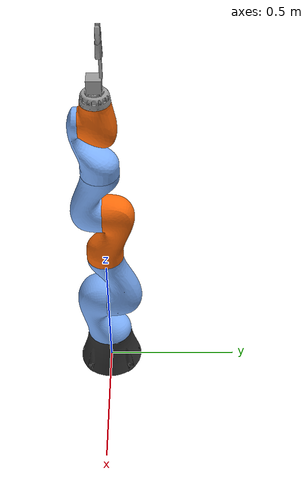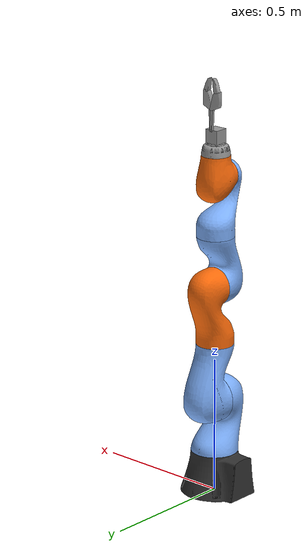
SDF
<?xml version="1.0" ?>
<sdf version='1.6'>
  <world name='default'>
  <model name='lbr_iiwa_with_wsg50'>
    <link name='lbr_iiwa_link_0'>
      <pose>0 0 0 0 -0 0</pose>
      <inertial>
        <pose>-0.1 0 0.07 0 -0 0</pose>
        <mass>0</mass>
        <inertia>
          <ixx>0.05</ixx>
          <ixy>0</ixy>
          <ixz>0</ixz>
          <iyy>0.06</iyy>
          <iyz>0</iyz>
          <izz>0.03</izz>
        </inertia>
      </inertial>
      <collision name='lbr_iiwa_link_0_collision'>
        <pose>0 0 0 0 -0 0</pose>
        <geometry>
          <mesh>
            <scale>1 1 1</scale>
            <uri>/meshes/link_0.stl</uri>
          </mesh>
        </geometry>
      </collision>
      <visual name='lbr_iiwa_link_0_visual'>
        <pose>0 0 0 0 -0 0</pose>
        <geometry>
          <mesh>
            <scale>1 1 1</scale>
            <uri>meshes/link_0.obj</uri>
          </mesh>
        </geometry>
        <material>
          <ambient>1 0 0 1</ambient>
          <diffuse>0.2 0.2 0.2 1.0</diffuse>
          <specular>0.4 0.4 0.4 1</specular>
          <emissive>0 0 0 0</emissive>
        </material>
      </visual>
    </link>
    <link name='lbr_iiwa_link_1'>
      <pose>0 0 0.1575 0 -0 0</pose>
      <inertial>
        <pose>0 -0.03 0.12 0 -0 0</pose>
        <mass>4</mass>
        <inertia>
          <ixx>0.1</ixx>
          <ixy>0</ixy>
          <ixz>0</ixz>
          <iyy>0.09</iyy>
          <iyz>0</iyz>
          <izz>0.02</izz>
        </inertia>
      </inertial>
      <collision name='lbr_iiwa_link_1_collision'>
        <pose>0 0 0 0 -0 0</pose>
        <geometry>
          <mesh>
            <scale>1 1 1</scale>
            <uri>meshes/link_1.stl</uri>
          </mesh>
        </geometry>
      </collision>
      <visual name='lbr_iiwa_link_1_visual'>
        <pose>0 0 0 0 -0 0</pose>
        <geometry>
          <mesh>
            <scale>1 1 1</scale>
            <uri>meshes/link_1.obj</uri>
          </mesh>
        </geometry>
        <material>
          <ambient>1 0 0 1</ambient>
          <diffuse>0.5 0.7 1.0 1.0</diffuse>
          <specular>0.5 0.5 0.5 1</specular>
          <emissive>0 0 0 0</emissive>
        </material>
      </visual>
    </link>
    <joint name='J0' type='revolute'>
      <child>lbr_iiwa_link_1</child>
      <parent>lbr_iiwa_link_0</parent>
      <axis>
        <xyz>0 0 1</xyz>
        <limit>
          <lower>-2.96706</lower>
          <upper>2.96706</upper>
          <effort>300</effort>
          <velocity>10</velocity>
        </limit>
        <dynamics>
          <damping>0.5</damping>
          <friction>0</friction>
          <spring_reference>0</spring_reference>
          <spring_stiffness>0</spring_stiffness>
        </dynamics>
      </axis>
    </joint>
    <link name='lbr_iiwa_link_2'>
      <pose>0 0 0.36 1.5708 -0 -3.14159</pose>
      <inertial>
        <pose>0.0003 0.059 0.042 0 -0 0</pose>
        <mass>4</mass>
        <inertia>
          <ixx>0.05</ixx>
          <ixy>0</ixy>
          <ixz>0</ixz>
          <iyy>0.018</iyy>
          <iyz>0</iyz>
          <izz>0.044</izz>
        </inertia>
      </inertial>
      <collision name='lbr_iiwa_link_2_collision'>
        <pose>0 0 0 0 -0 0</pose>
        <geometry>
          <mesh>
            <scale>1 1 1</scale>
            <uri>meshes/link_2.stl</uri>
          </mesh>
        </geometry>
      </collision>
      <visual name='lbr_iiwa_link_2_visual'>
        <pose>0 0 0 0 -0 0</pose>
        <geometry>
          <mesh>
            <scale>1 1 1</scale>
            <uri>meshes/link_2.obj</uri>
          </mesh>
        </geometry>
        <material>
          <ambient>1 0 0 1</ambient>
          <diffuse>0.5 0.7 1.0 1.0</diffuse>
          <specular>0.5 0.5 0.5 1</specular>
          <emissive>0 0 0 0</emissive>
        </material>
      </visual>
    </link>
    <joint name='J1' type='revolute'>
      <child>lbr_iiwa_link_2</child>
      <parent>lbr_iiwa_link_1</parent>
      <axis>
        <xyz>0 0 1</xyz>
        <limit>
          <lower>-2.0944</lower>
          <upper>2.0944</upper>
          <effort>300</effort>
          <velocity>10</velocity>
        </limit>
        <dynamics>
          <damping>0.5</damping>
          <friction>0</friction>
          <spring_reference>0</spring_reference>
          <spring_stiffness>0</spring_stiffness>
        </dynamics>
      </axis>
    </joint>
    <link name='lbr_iiwa_link_3'>
      <pose>0 -0 0.5645 0 0 0</pose>
      <inertial>
        <pose>0 0.03 0.13 0 -0 0</pose>
        <mass>3</mass>
        <inertia>
          <ixx>0.08</ixx>
          <ixy>0</ixy>
          <ixz>0</ixz>
          <iyy>0.075</iyy>
          <iyz>0</iyz>
          <izz>0.01</izz>
        </inertia>
      </inertial>
      <collision name='lbr_iiwa_link_3_collision'>
        <pose>0 0 0 0 -0 0</pose>
        <geometry>
          <mesh>
            <scale>1 1 1</scale>
            <uri>meshes/link_3.stl</uri>
          </mesh>
        </geometry>
      </collision>
      <visual name='lbr_iiwa_link_3_visual'>
        <pose>0 0 0 0 -0 0</pose>
        <geometry>
          <mesh>
            <scale>1 1 1</scale>
            <uri>meshes/link_3.obj</uri>
          </mesh>
        </geometry>
        <material>
          <ambient>1 0 0 1</ambient>
          <diffuse>1.0 0.423529411765 0.0392156862745 1.0</diffuse>
          <specular>0.5 0.5 0.5 1</specular>
          <emissive>0 0 0 0</emissive>
        </material>
      </visual>
    </link>
    <joint name='J2' type='revolute'>
      <child>lbr_iiwa_link_3</child>
      <parent>lbr_iiwa_link_2</parent>
      <axis>
        <xyz>0 0 1</xyz>
        <limit>
          <lower>-2.96706</lower>
          <upper>2.96706</upper>
          <effort>300</effort>
          <velocity>10</velocity>
        </limit>
        <dynamics>
          <damping>0.5</damping>
          <friction>0</friction>
          <spring_reference>0</spring_reference>
          <spring_stiffness>0</spring_stiffness>
        </dynamics>
      </axis>
    </joint>
    <link name='lbr_iiwa_link_4'>
      <pose>0 -0 0.78 1.5708 0 0</pose>
      <inertial>
        <pose>0 0.067 0.034 0 -0 0</pose>
        <mass>2.7</mass>
        <inertia>
          <ixx>0.03</ixx>
          <ixy>0</ixy>
          <ixz>0</ixz>
          <iyy>0.01</iyy>
          <iyz>0</iyz>
          <izz>0.029</izz>
        </inertia>
      </inertial>
      <collision name='lbr_iiwa_link_4_collision'>
        <pose>0 0 0 0 -0 0</pose>
        <geometry>
          <mesh>
            <scale>1 1 1</scale>
            <uri>meshes/link_4.stl</uri>
          </mesh>
        </geometry>
      </collision>
      <visual name='lbr_iiwa_link_4_visual'>
        <pose>0 0 0 0 -0 0</pose>
        <geometry>
          <mesh>
            <scale>1 1 1</scale>
            <uri>meshes/link_4.obj</uri>
          </mesh>
        </geometry>
        <material>
          <ambient>1 0 0 1</ambient>
          <diffuse>0.5 0.7 1.0 1.0</diffuse>
          <specular>0.5 0.5 0.5 1</specular>
          <emissive>0 0 0 0</emissive>
        </material>
      </visual>
    </link>
    <joint name='J3' type='revolute'>
      <child>lbr_iiwa_link_4</child>
      <parent>lbr_iiwa_link_3</parent>
      <axis>
        <xyz>0 0 1</xyz>
        <limit>
          <lower>-2.0944</lower>
          <upper>2.0944</upper>
          <effort>300</effort>
          <velocity>10</velocity>
        </limit>
        <dynamics>
          <damping>0.5</damping>
          <friction>0</friction>
          <spring_reference>0</spring_reference>
          <spring_stiffness>0</spring_stiffness>
        </dynamics>
      </axis>
    </joint>
    <link name='lbr_iiwa_link_5'>
      <pose>0 -0 0.9645 0 -0 -3.14159</pose>
      <inertial>
        <pose>0.0001 0.021 0.076 0 -0 0</pose>
        <mass>1.7</mass>
        <inertia>
          <ixx>0.02</ixx>
          <ixy>0</ixy>
          <ixz>0</ixz>
          <iyy>0.018</iyy>
          <iyz>0</iyz>
          <izz>0.005</izz>
        </inertia>
      </inertial>
      <collision name='lbr_iiwa_link_5_collision'>
        <pose>0 0 0 0 -0 0</pose>
        <geometry>
          <mesh>
            <scale>1 1 1</scale>
            <uri>meshes/link_5.stl</uri>
          </mesh>
        </geometry>
      </collision>
      <visual name='lbr_iiwa_link_5_visual'>
        <pose>0 0 0 0 -0 0</pose>
        <geometry>
          <mesh>
            <scale>1 1 1</scale>
            <uri>meshes/link_5.obj</uri>
          </mesh>
        </geometry>
        <material>
          <ambient>1 0 0 1</ambient>
          <diffuse>0.5 0.7 1.0 1.0</diffuse>
          <specular>0.5 0.5 0.5 1</specular>
          <emissive>0 0 0 0</emissive>
        </material>
      </visual>
    </link>
    <joint name='J4' type='revolute'>
      <child>lbr_iiwa_link_5</child>
      <parent>lbr_iiwa_link_4</parent>
      <axis>
        <xyz>0 0 1</xyz>
        <limit>
          <lower>-2.96706</lower>
          <upper>2.96706</upper>
          <effort>300</effort>
          <velocity>10</velocity>
        </limit>
        <dynamics>
          <damping>0.5</damping>
          <friction>0</friction>
          <spring_reference>0</spring_reference>
          <spring_stiffness>0</spring_stiffness>
        </dynamics>
      </axis>
    </joint>
    <link name='lbr_iiwa_link_6'>
      <pose>0 0 1.18 1.5708 -0 -3.14159</pose>
      <inertial>
        <pose>0 0.0006 0.0004 0 -0 0</pose>
        <mass>1.8</mass>
        <inertia>
          <ixx>0.005</ixx>
          <ixy>0</ixy>
          <ixz>0</ixz>
          <iyy>0.0036</iyy>
          <iyz>0</iyz>
          <izz>0.0047</izz>
        </inertia>
      </inertial>
      <collision name='lbr_iiwa_link_6_collision'>
        <pose>0 0 0 0 -0 0</pose>
        <geometry>
          <mesh>
            <scale>1 1 1</scale>
            <uri>meshes/link_6.stl</uri>
          </mesh>
        </geometry>
      </collision>
      <visual name='lbr_iiwa_link_6_visual'>
        <pose>0 0 0 0 -0 0</pose>
        <geometry>
          <mesh>
            <scale>1 1 1</scale>
            <uri>meshes/link_6.obj</uri>
          </mesh>
        </geometry>
        <material>
          <ambient>1 0 0 1</ambient>
          <diffuse>1.0 0.423529411765 0.0392156862745 1.0</diffuse>
          <specular>0.5 0.5 0.5 1</specular>
          <emissive>0 0 0 0</emissive>
        </material>
      </visual>
    </link>
    <joint name='J5' type='revolute'>
      <child>lbr_iiwa_link_6</child>
      <parent>lbr_iiwa_link_5</parent>
      <axis>
        <xyz>0 0 1</xyz>
        <limit>
          <lower>-2.0944</lower>
          <upper>2.0944</upper>
          <effort>300</effort>
          <velocity>10</velocity>
        </limit>
        <dynamics>
          <damping>0.5</damping>
          <friction>0</friction>
          <spring_reference>0</spring_reference>
          <spring_stiffness>0</spring_stiffness>
        </dynamics>
      </axis>
    </joint>
    <link name='lbr_iiwa_link_7'>
      <pose>0 0 1.261 0 0 0</pose>
      <inertial>
        <pose>0 0 0.02 0 -0 0</pose>
        <mass>1.3</mass>
        <inertia>
          <ixx>0.001</ixx>
          <ixy>0</ixy>
          <ixz>0</ixz>
          <iyy>0.001</iyy>
          <iyz>0</iyz>
          <izz>0.001</izz>
        </inertia>
      </inertial>
      <collision name='lbr_iiwa_link_7_collision'>
        <pose>0 0 0 0 -0 0</pose>
        <geometry>
          <mesh>
            <scale>1 1 1</scale>
            <uri>meshes/link_7.stl</uri>
          </mesh>
        </geometry>
      </collision>
      <visual name='lbr_iiwa_link_7_visual'>
        <pose>0 0 0 0 -0 0</pose>
        <geometry>
          <mesh>
            <scale>1 1 1</scale>
            <uri>meshes/link_7.obj</uri>
          </mesh>
        </geometry>
        <material>
          <ambient>1 0 0 1</ambient>
          <diffuse>0.6 0.6 0.6 1</diffuse>
          <specular>0.5 0.5 0.5 1</specular>
          <emissive>0 0 0 0</emissive>
        </material>
      </visual>
    </link>
    <joint name='J6' type='revolute'>
      <child>lbr_iiwa_link_7</child>
      <parent>lbr_iiwa_link_6</parent>
      <axis>
        <xyz>0 0 1</xyz>
        <limit>
          <lower>-3.05433</lower>
          <upper>3.05433</upper>
          <effort>300</effort>
          <velocity>10</velocity>
        </limit>
        <dynamics>
          <damping>0.5</damping>
          <friction>0</friction>
          <spring_reference>0</spring_reference>
          <spring_stiffness>0</spring_stiffness>
        </dynamics>
      </axis>
    </joint>

    <!-- Attach the base of the gripper to the end of the arm -->
    <joint name='gripper_to_arm' type='continuous'>
      <parent>lbr_iiwa_link_7</parent>
      <child>base_link</child>
      <axis>
        <xyz>0 0 1</xyz>
      </axis>
    </joint>

    <link name='base_link'>
      <pose>0 0 1.305 0 -0 0</pose>
      <inertial>
        <pose>0 0 0 0 -0 0</pose>
        <mass>0.2</mass>
        <inertia>
          <ixx>1</ixx>
          <ixy>0</ixy>
          <ixz>0</ixz>
          <iyy>1</iyy>
          <iyz>0</iyz>
          <izz>1</izz>
        </inertia>
      </inertial>
      <visual name='base_link_visual'>
        <pose>0 0 0 0 0 0</pose>
        <geometry>
		  <box>
		     <size>0.05 0.05 0.1 </size>
		  </box>
        </geometry>
        <material>
          <ambient>1 0 0 1</ambient>
          <diffuse>0.6 0.6 0.6 1</diffuse>
          <specular>0.5 0.5 0.5 1</specular>
          <emissive>0 0 0 0</emissive>
        </material>
      </visual>
        <collision name='base_link_collision'>
        <pose>0 0 0 0 0 0</pose>
        <geometry>
		  <box>
		     <size>0.05 0.05 0.1 </size>
		  </box>
        </geometry>
        <material>
          <ambient>1 0 0 1</ambient>
          <diffuse>0.6 0.6 0.6 1</diffuse>
          <specular>0.5 0.5 0.5 1</specular>
          <emissive>0 0 0 0</emissive>
        </material>
      </collision>
    </link>

    <joint name='base_left_finger_joint' type='revolute'>
      <parent>base_link</parent>
      <child>left_finger</child>
      <axis>
        <xyz>0 1 0</xyz>
        <limit>
          <lower>-10.4</lower>
          <upper>10.01</upper>
          <effort>100</effort>
          <velocity>0</velocity>
        </limit>
        <dynamics>
          <damping>0</damping>
          <friction>0</friction>
          <spring_reference>0</spring_reference>
          <spring_stiffness>0</spring_stiffness>
        </dynamics>
      </axis>
    </joint>
    <link name='left_finger'>
      <pose>0 0.024 1.35 0 -0.05 0</pose>
      <inertial>
        <pose>0 0 0.04 0 0 0</pose>
        <mass>0.2</mass>
        <inertia>
          <ixx>0.1</ixx>
          <ixy>0</ixy>
          <ixz>0</ixz>
          <iyy>0.1</iyy>
          <iyz>0</iyz>
          <izz>0.1</izz>
        </inertia>
      </inertial>
      <visual name='left_finger_visual'>
        <pose>0 0 0.04 0 0 0</pose>
        <geometry>
          <box>
            <size>0.01 0.01 0.08</size>
          </box>
        </geometry>
        <material>
          <ambient>1 0 0 1</ambient>
          <diffuse>0.6 0.6 0.6 1</diffuse>
          <specular>0.5 0.5 0.5 1</specular>
          <emissive>0 0 0 0</emissive>
        </material>
      </visual>
       <collision name='left_finger_collision'>
        <pose>0 0 0.04 0 0 0</pose>
        <geometry>
          <box>
            <size>0.01 0.01 0.08</size>
          </box>
        </geometry>

      </collision>
    </link>
    <joint name='left_finger_base_joint' type='fixed'>
      <parent>left_finger</parent>
      <child>left_finger_base</child>
    </joint>
    <link name='left_finger_base'>
    <contact>
        <lateral_friction>0.8</lateral_friction>
        <spinning_friction>.1</spinning_friction>
      </contact>
      <pose>-0.005 0.024 1.43 0 -0.3 0</pose>
      <inertial>
        <pose>-0.003 0 0.04 0 0 0 </pose>
        <mass>0.2</mass>
        <inertia>
          <ixx>0.1</ixx>
          <ixy>0</ixy>
          <ixz>0</ixz>
          <iyy>0.1</iyy>
          <iyz>0</iyz>
          <izz>0.1</izz>
        </inertia>
      </inertial>
      <visual name='left_finger_base_visual'>
        <pose>0 0 0 0 0 0 </pose>
        <geometry>
          <mesh>
            <scale>1 1 1 </scale>
            <uri>meshes/finger_base_left.stl</uri>
          </mesh>
        </geometry>
        <material>
          <ambient>1 0 0 1</ambient>
          <diffuse>0.6 0.6 0.6 1</diffuse>
          <specular>0.5 0.5 0.5 1</specular>
          <emissive>0 0 0 0</emissive>
        </material>
      </visual>
      <collision name='left_finger_base_collision'>
        <pose>0 0 0 0 0 0 </pose>
        <geometry>
          <mesh>
            <scale>1 1 1 </scale>
            <uri>meshes/finger_base_left.stl</uri>
          </mesh>
        </geometry>
      </collision>
    </link>
    <joint name='left_base_tip_joint' type='revolute'>
      <parent>left_finger_base</parent>
      <child>left_finger_tip</child>
      <axis>
        <xyz>0 1 0</xyz>
        <limit>
          <lower>-10.1</lower>
          <upper>10.3</upper>
          <effort>0</effort>
          <velocity>0</velocity>
        </limit>
        <dynamics>
          <damping>0</damping>
          <friction>0</friction>
          <spring_reference>0</spring_reference>
          <spring_stiffness>0</spring_stiffness>
        </dynamics>
      </axis>
    </joint>
    <link name='left_finger_tip'>
      <contact>
        <lateral_friction>0.8</lateral_friction>
        <spinning_friction>.1</spinning_friction>
      </contact>
      <pose>-0.02 0.024 1.49 0 0.2 0</pose>
      <inertial>
        <pose>-0.005 0 0.026 0 0 0 </pose>
        <mass>0.2</mass>
        <inertia>
          <ixx>0.1</ixx>
          <ixy>0</ixy>
          <ixz>0</ixz>
          <iyy>0.1</iyy>
          <iyz>0</iyz>
          <izz>0.1</izz>
        </inertia>
      </inertial>
      <visual name='left_finger_tip_visual'>
        <pose>0 0 0 0 0 0</pose>
        <geometry>
          <mesh>
            <scale>1 1 1 </scale>
            <uri>meshes/finger_tip_left.stl</uri>
          </mesh>
        </geometry>
        <material>
          <ambient>1 0 0 1</ambient>
          <diffuse>0.6 0.6 0.6 1</diffuse>
          <specular>0.5 0.5 0.5 1</specular>
          <emissive>0 0 0 0</emissive>
        </material>
      </visual>
      <collision name='left_finger_tip_collision'>
        <pose>0 0 0 0 0 0</pose>
        <geometry>
          <mesh>
            <scale>1 1 1 </scale>
            <uri>meshes/finger_tip_left.stl</uri>
          </mesh>
        </geometry>
      </collision>
    </link>
    <joint name='base_right_finger_joint' type='revolute'>
      <parent>base_link</parent>
      <child>right_finger</child>
      <axis>
        <xyz>0 1 0</xyz>
        <limit>
          <lower>-10.01</lower>
          <upper>10.4</upper>
          <effort>100</effort>
          <velocity>0</velocity>
        </limit>
        <dynamics>
          <damping>0</damping>
          <friction>0</friction>
          <spring_reference>0</spring_reference>
          <spring_stiffness>0</spring_stiffness>
        </dynamics>
      </axis>
    </joint>
    <link name='right_finger'>
    <contact>
        <lateral_friction>0.8</lateral_friction>
        <spinning_friction>.1</spinning_friction>
      </contact>
      <pose>0 0.024 1.35 0 0.05 0</pose>
      <inertial>
        <pose>0 0 0.04 0 0 0</pose>
        <mass>0.2</mass>
        <inertia>
          <ixx>0.1</ixx>
          <ixy>0</ixy>
          <ixz>0</ixz>
          <iyy>0.1</iyy>
          <iyz>0</iyz>
          <izz>0.1</izz>
        </inertia>
      </inertial>
      <visual name='right_finger_visual'>
        <pose>0 0 0.04 0 0 0</pose>
        <geometry>
          <box>
            <size>0.01 0.01 0.08</size>
          </box>
        </geometry>
        <material>
          <ambient>1 0 0 1</ambient>
          <diffuse>0.6 0.6 0.6 1</diffuse>
          <specular>0.5 0.5 0.5 1</specular>
          <emissive>0 0 0 0</emissive>
        </material>
      </visual>
      <collision name='right_finger_collision'>
        <pose>0 0 0.04 0 0 0</pose>
        <geometry>
          <box>
            <size>0.01 0.01 0.08</size>
          </box>
        </geometry>
        <material>
          <ambient>1 0 0 1</ambient>
          <diffuse>0.6 0.6 0.6 1</diffuse>
          <specular>0.5 0.5 0.5 1</specular>
          <emissive>0 0 0 0</emissive>
        </material>
      </collision>
    </link>
    <joint name='right_finger_base_joint' type='fixed'>
      <parent>right_finger</parent>
      <child>right_finger_base</child>
    </joint>
    <link name='right_finger_base'>
    <contact>
        <lateral_friction>0.8</lateral_friction>
        <spinning_friction>.1</spinning_friction>
      </contact>
      <pose>0.005 0.024 1.43 0 0.3 0</pose>
      <inertial>
        <pose>0.003 0 0.04 0 0 0 </pose>
        <mass>0.2</mass>
        <inertia>
          <ixx>0.1</ixx>
          <ixy>0</ixy>
          <ixz>0</ixz>
          <iyy>0.1</iyy>
          <iyz>0</iyz>
          <izz>0.1</izz>
        </inertia>
      </inertial>
      <visual name='right_finger_base_visual'>
        <pose>0 0 0 0 0 0 </pose>
        <geometry>
          <mesh>
            <scale>1 1 1 </scale>
            <uri>meshes/finger_base_right.stl</uri>
          </mesh>
        </geometry>
        <material>
          <ambient>1 0 0 1</ambient>
          <diffuse>0.6 0.6 0.6 1</diffuse>
          <specular>0.5 0.5 0.5 1</specular>
          <emissive>0 0 0 0</emissive>
        </material>
      </visual>
      <collision name='right_finger_base_collision'>
        <pose>0 0 0 0 0 0 </pose>
        <geometry>
          <mesh>
            <scale>1 1 1 </scale>
            <uri>meshes/finger_base_right.stl</uri>
          </mesh>
        </geometry>
      </collision>
    </link>
    <joint name='right_base_tip_joint' type='revolute'>
      <parent>right_finger_base</parent>
      <child>right_finger_tip</child>
      <axis>
        <xyz>0 1 0</xyz>
        <limit>
          <lower>-10.3</lower>
          <upper>10.1</upper>
          <effort>0</effort>
          <velocity>0</velocity>
        </limit>
        <dynamics>
          <damping>0</damping>
          <friction>0</friction>
          <spring_reference>0</spring_reference>
          <spring_stiffness>0</spring_stiffness>
        </dynamics>
      </axis>
    </joint>
    <link name='right_finger_tip'>
      <contact>
        <lateral_friction>0.8</lateral_friction>
        <spinning_friction>.1</spinning_friction>
      </contact>
      <pose>0.02 0.024 1.49 0 -0.2 0</pose>
      <inertial>
        <pose>0.005 0 0.026 0 0 0 </pose>
        <mass>0.2</mass>
        <inertia>
          <ixx>0.1</ixx>
          <ixy>0</ixy>
          <ixz>0</ixz>
          <iyy>0.1</iyy>
          <iyz>0</iyz>
          <izz>0.1</izz>
        </inertia>
      </inertial>
      <visual name='right_finger_visual'>
        <pose>0 0 0 0 0 0</pose>
        <geometry>
          <mesh>
            <scale>1 1 1 </scale>
            <uri>meshes/finger_tip_right.stl</uri>
          </mesh>
        </geometry>
        <material>
          <ambient>1 0 0 1</ambient>
          <diffuse>0.6 0.6 0.6 1</diffuse>
          <specular>0.5 0.5 0.5 1</specular>
          <emissive>0 0 0 0</emissive>
        </material>
      </visual>
      <collision name='right_finger_tip_collision'>
        <pose>0 0 0 0 0 0</pose>
        <geometry>
          <mesh>
            <scale>1 1 1 </scale>
            <uri>meshes/finger_tip_right.stl</uri>
          </mesh>
        </geometry>
      </collision>
    </link>
  </model>
</world>
</sdf>
